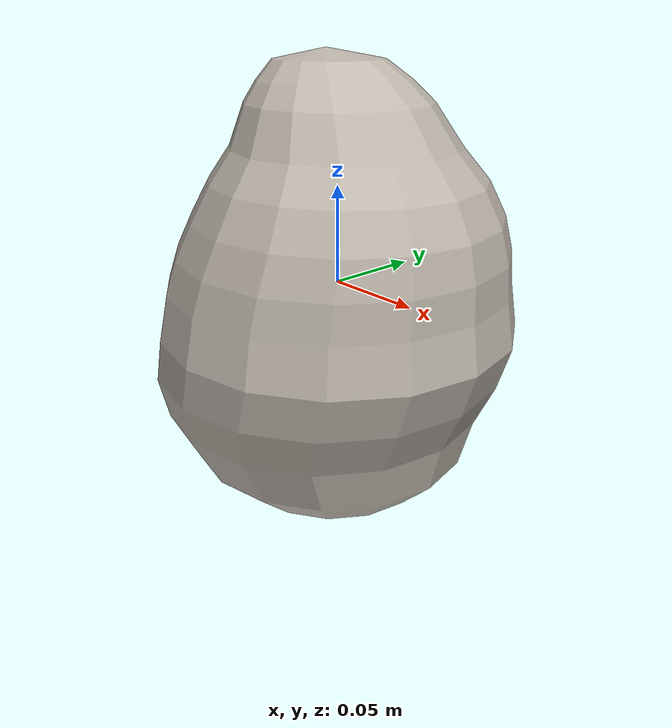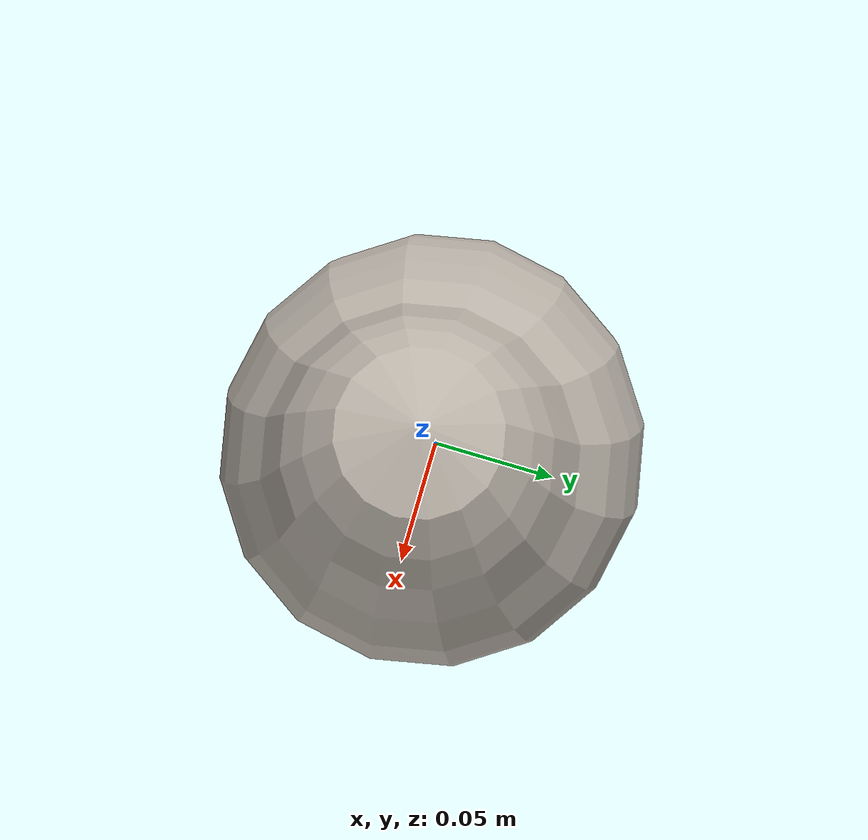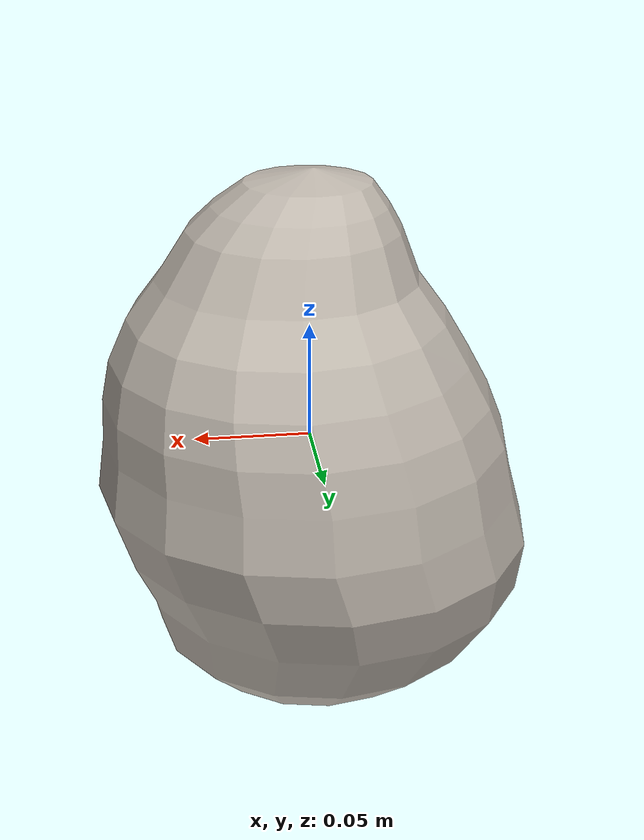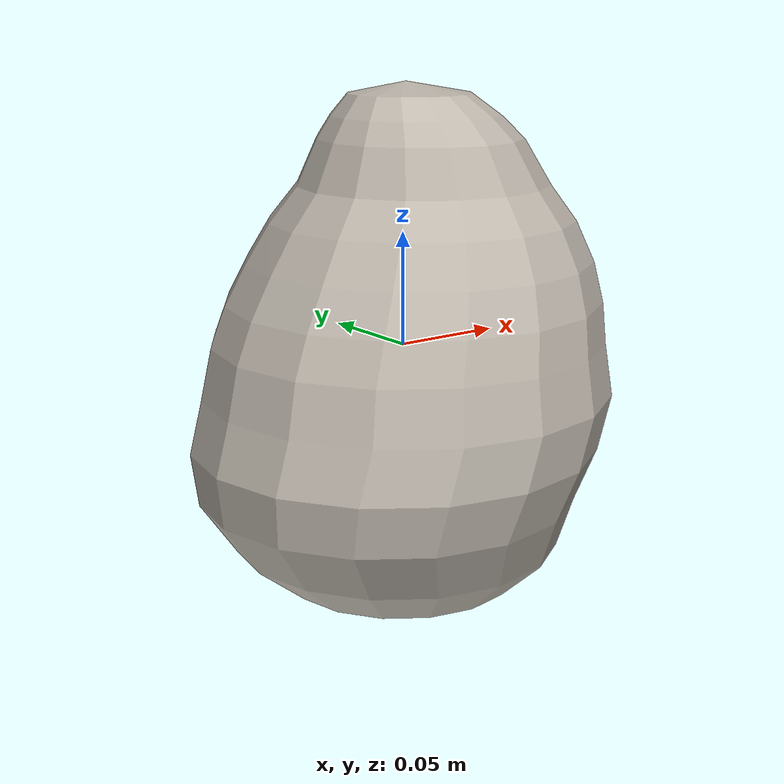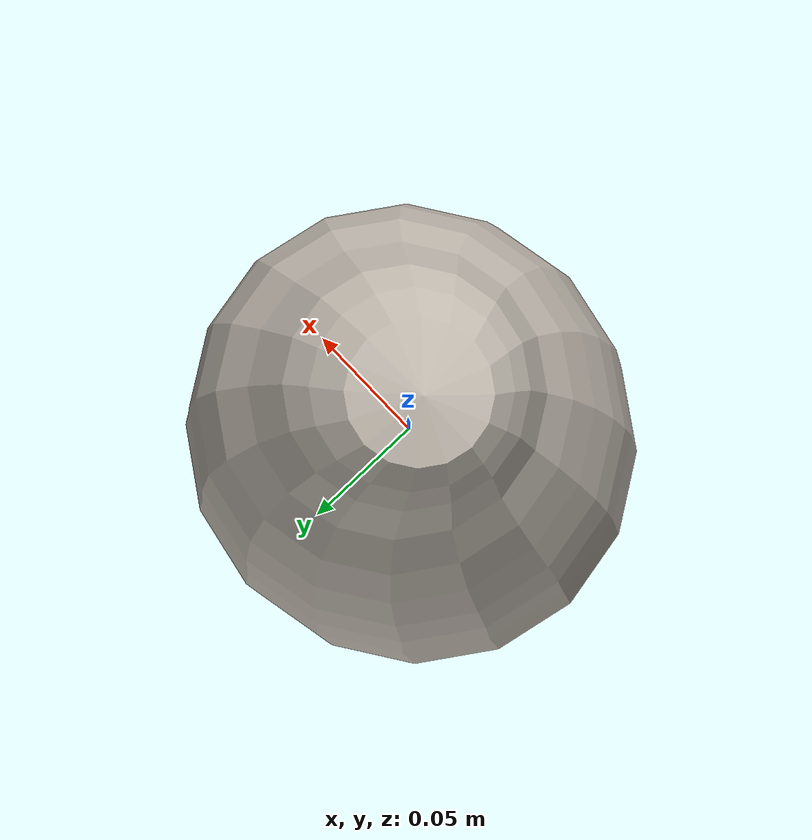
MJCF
<mujoco model="Lettuce_14">
  <compiler autolimits="true" boundmass="0.01" angle="radian"/>
  <default>
    <default class="/">
      <default class="__VISUAL_MJT__">
        <geom contype="0" conaffinity="0" group="0"/>
      </default>
      <default class="__STRUCTURAL_MJT__">
        <geom contype="8" conaffinity="15" group="4" friction="0.90000000000000002 0.90000000000000002 0.001" solref="0.025000000000000001 1" solimp="0.998 0.998 0.001"/>
      </default>
      <default class="__DYNAMIC_MJT__">
        <geom contype="1" conaffinity="15" group="4" friction="0.90000000000000002 0.90000000000000002 0.001" solref="0.025000000000000001 1" solimp="0.998 0.998 0.001"/>
      </default>
    </default>
  </default>
  <asset>
    <texture name="Lettuce2_Mat" type="2d" file="Lettuce2_AlbedoTransparency.png"/>
    <material name="material_Lettuce2_Mat" class="/" texture="Lettuce2_Mat" specular="0.5" shininess="0.5" rgba="1 1 1 1"/>
    <mesh name="Lettuce_14_lettuce_b3" class="/" file="Lettuce_14_lettuce_b3/Lettuce_14_lettuce_b3.obj" scale="1 1 1"/>
  </asset>
  <worldbody>
    <body name="Lettuce_14">
      <joint name="Lettuce_14_free" class="/" type="free" pos="0 0 0" axis="0 0 1" stiffness="0" range="0 0" armature="0" damping="0.10000000000000001" frictionloss="0"/>
      <body name="Lettuce_14_lettuce_b3" pos="-0.00066 -0.00075000000000000002 -0.0020600000000000002" quat="1 0 0 0">
        <geom name="Lettuce_14_lettuce_b3" class="__VISUAL_MJT__" type="mesh" material="material_Lettuce2_Mat" shellinertia="true" mesh="Lettuce_14_lettuce_b3"/>
        <geom name="Lettuce_14_PrimitiveCollider_0" class="__DYNAMIC_MJT__" type="capsule" size="0.090065725147724152 0.013720884919166565" rgba="0 1 0 1" pos="-0.00065759476274251938 0.00075094029307365417 -0.013124287128448486" quat="0.99814020414953497 1.6437270111671447e-06 -1.0536711610512063e-07 -0.06096009233598549"/>
        <geom name="Lettuce_14_PrimitiveCollider_1" class="__DYNAMIC_MJT__" type="capsule" size="0.056372072547674179 0.0083804689347743988" rgba="0 1 0 1" pos="0.0093903448432683945 -0.0019835233688354492 0.05653097853064537" quat="0.98916954720733652 1.5594333913838448e-06 2.1600259814125167e-07 0.1467774058741822"/>
      </body>
    </body>
  </worldbody>
</mujoco>
